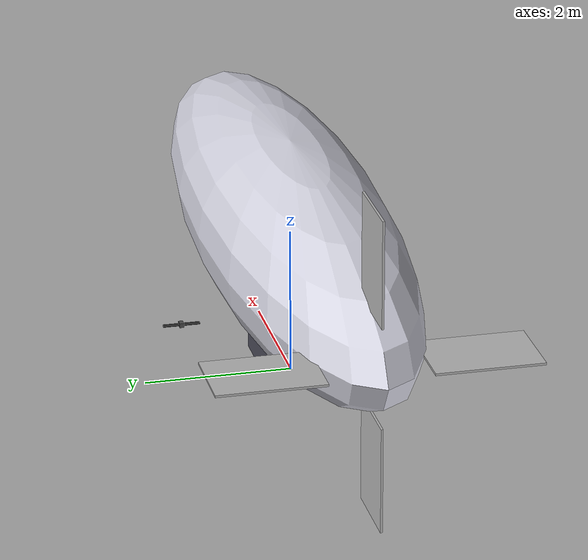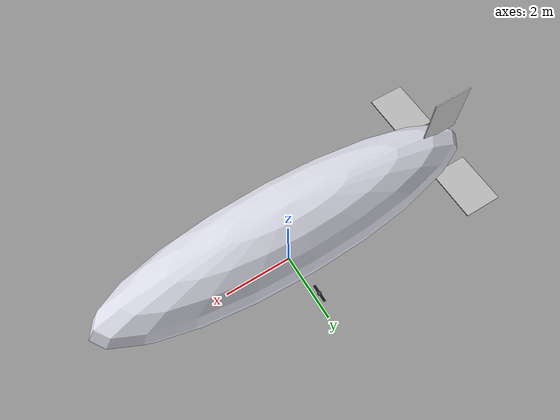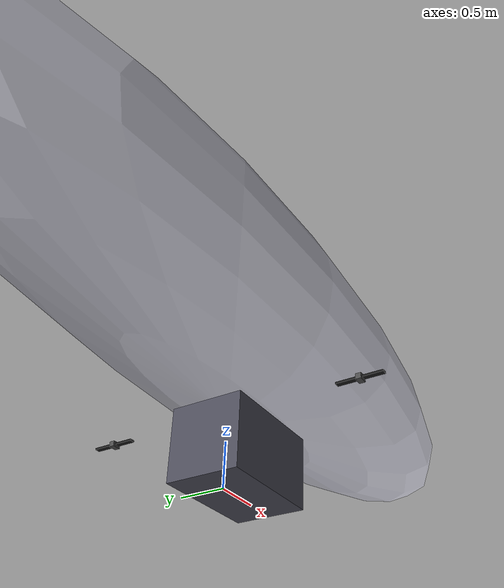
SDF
<?xml version="1.0" encoding="UTF-8"?>
<sdf version="1.10">
  <model name="airship_vectored_independent_am_fin">
    <include merge="true">
      <uri>model://airship_vectored_independent_am</uri>
    </include>
    <plugin filename="gz-sim-lift-drag-system" name="gz::sim::systems::LiftDrag">
      <!-- fin_port -->
      <link_name>base_link</link_name>
      <air_density>1.225</air_density>
      <cp>-4.200 1.363 2.050</cp>
      <forward>1 0 0</forward>
      <upward>0 0 1</upward>
      <area>1.40</area>
      <a0>0</a0>
      <cla>6.400</cla>
      <cda>0.903</cda>
      <cma>0</cma>
      <alpha_stall>0.3</alpha_stall>
      <cla_stall>-1.35</cla_stall>
      <cda_stall>1.2</cda_stall>
      <cma_stall>0</cma_stall>
    </plugin>
    <plugin filename="gz-sim-lift-drag-system" name="gz::sim::systems::LiftDrag">
      <!-- fin_starboard -->
      <link_name>base_link</link_name>
      <air_density>1.225</air_density>
      <cp>-4.200 -1.363 2.050</cp>
      <forward>1 0 0</forward>
      <upward>0 0 1</upward>
      <area>1.40</area>
      <a0>0</a0>
      <cla>6.400</cla>
      <cda>0.903</cda>
      <cma>0</cma>
      <alpha_stall>0.3</alpha_stall>
      <cla_stall>-1.35</cla_stall>
      <cda_stall>1.2</cda_stall>
      <cma_stall>0</cma_stall>
    </plugin>
    <plugin filename="gz-sim-lift-drag-system" name="gz::sim::systems::LiftDrag">
      <!-- fin_top -->
      <link_name>base_link</link_name>
      <air_density>1.225</air_density>
      <cp>-4.200 0.000 3.413</cp>
      <forward>1 0 0</forward>
      <upward>0 1 0</upward>
      <area>1.40</area>
      <a0>0</a0>
      <cla>6.400</cla>
      <cda>0.903</cda>
      <cma>0</cma>
      <alpha_stall>0.3</alpha_stall>
      <cla_stall>-1.35</cla_stall>
      <cda_stall>1.2</cda_stall>
      <cma_stall>0</cma_stall>
    </plugin>
    <plugin filename="gz-sim-lift-drag-system" name="gz::sim::systems::LiftDrag">
      <!-- fin_bottom -->
      <link_name>base_link</link_name>
      <air_density>1.225</air_density>
      <cp>-4.200 0.000 0.687</cp>
      <forward>1 0 0</forward>
      <upward>0 1 0</upward>
      <area>1.40</area>
      <a0>0</a0>
      <cla>6.400</cla>
      <cda>0.903</cda>
      <cma>0</cma>
      <alpha_stall>0.3</alpha_stall>
      <cla_stall>-1.35</cla_stall>
      <cda_stall>1.2</cda_stall>
      <cma_stall>0</cma_stall>
    </plugin>
  </model>
</sdf>

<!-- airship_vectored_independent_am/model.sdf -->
<sdf version="1.10">
  <model name="airship_vectored_independent_am">
    <include merge="true">
      <uri>model://airship_base_am</uri>
    </include>
    <link name="pod_starboard">
      <pose>0 -1.5 0.8125 0 0 0</pose>
      <inertial>
        <mass>0.4</mass>
        <inertia>
          <ixx>0.001</ixx>
          <iyy>0.001</iyy>
          <izz>0.001</izz>
        </inertia>
      </inertial>
      <visual name="pod_starboard_visual">
        <geometry>
          <box>
            <size>0.10 0.06 0.06</size>
          </box>
        </geometry>
        <material>
          <ambient>0.3 0.3 0.3 1</ambient>
          <diffuse>0.3 0.3 0.3 1</diffuse>
        </material>
      </visual>
    </link>
    <joint name="tilt_starboard_joint" type="revolute">
      <parent>base_link</parent>
      <child>pod_starboard</child>
      <axis>
        <xyz>0 -1 0</xyz>
        <limit>
          <lower>-3.141593</lower>
          <upper>3.141593</upper>
        </limit>
        <dynamics>
          <damping>0.01</damping>
        </dynamics>
      </axis>
    </joint>
    <link name="prop_starboard">
      <pose degrees="true">0 -1.5 0.8125 0 90 0</pose>
      <inertial>
        <mass>0.1</mass>
        <inertia>
          <ixx>0.001</ixx>
          <iyy>0.001</iyy>
          <izz>0.001</izz>
        </inertia>
      </inertial>
      <visual name="prop_starboard_visual">
        <geometry>
          <box>
            <size>0.02 0.5 0.06</size>
          </box>
        </geometry>
        <material>
          <ambient>0.1 0.1 0.1 1</ambient>
          <diffuse>0.1 0.1 0.1 1</diffuse>
        </material>
      </visual>
    </link>
    <joint name="prop_starboard_joint" type="revolute">
      <parent>pod_starboard</parent>
      <child>prop_starboard</child>
      <axis>
        <xyz>0 0 1</xyz>
        <limit>
          <lower>-1e+16</lower>
          <upper>1e+16</upper>
        </limit>
        <dynamics>
          <spring_reference>0</spring_reference>
          <spring_stiffness>0</spring_stiffness>
        </dynamics>
      </axis>
    </joint>
    <link name="pod_port">
      <pose>0 1.5 0.8125 0 0 0</pose>
      <inertial>
        <mass>0.4</mass>
        <inertia>
          <ixx>0.001</ixx>
          <iyy>0.001</iyy>
          <izz>0.001</izz>
        </inertia>
      </inertial>
      <visual name="pod_port_visual">
        <geometry>
          <box>
            <size>0.10 0.06 0.06</size>
          </box>
        </geometry>
        <material>
          <ambient>0.3 0.3 0.3 1</ambient>
          <diffuse>0.3 0.3 0.3 1</diffuse>
        </material>
      </visual>
    </link>
    <joint name="tilt_port_joint" type="revolute">
      <parent>base_link</parent>
      <child>pod_port</child>
      <axis>
        <xyz>0 -1 0</xyz>
        <limit>
          <lower>-3.141593</lower>
          <upper>3.141593</upper>
        </limit>
        <dynamics>
          <damping>0.01</damping>
        </dynamics>
      </axis>
    </joint>
    <link name="prop_port">
      <pose degrees="true">0 1.5 0.8125 0 90 0</pose>
      <inertial>
        <mass>0.1</mass>
        <inertia>
          <ixx>0.001</ixx>
          <iyy>0.001</iyy>
          <izz>0.001</izz>
        </inertia>
      </inertial>
      <visual name="prop_port_visual">
        <geometry>
          <box>
            <size>0.02 0.5 0.06</size>
          </box>
        </geometry>
        <material>
          <ambient>0.1 0.1 0.1 1</ambient>
          <diffuse>0.1 0.1 0.1 1</diffuse>
        </material>
      </visual>
    </link>
    <joint name="prop_port_joint" type="revolute">
      <parent>pod_port</parent>
      <child>prop_port</child>
      <axis>
        <xyz>0 0 1</xyz>
        <limit>
          <lower>-1e+16</lower>
          <upper>1e+16</upper>
        </limit>
        <dynamics>
          <spring_reference>0</spring_reference>
          <spring_stiffness>0</spring_stiffness>
        </dynamics>
      </axis>
    </joint>
    <plugin filename="gz-sim-joint-position-controller-system"
      name="gz::sim::systems::JointPositionController">
      <joint_name>tilt_starboard_joint</joint_name>
      <sub_topic>servo_0</sub_topic>
      <p_gain>2.0</p_gain>
      <i_gain>0.0</i_gain>
      <d_gain>0.1</d_gain>
    </plugin>
    <plugin filename="gz-sim-joint-position-controller-system"
      name="gz::sim::systems::JointPositionController">
      <joint_name>tilt_port_joint</joint_name>
      <sub_topic>servo_1</sub_topic>
      <p_gain>2.0</p_gain>
      <i_gain>0.0</i_gain>
      <d_gain>0.1</d_gain>
    </plugin>
    <plugin filename="gz-sim-multicopter-motor-model-system"
      name="gz::sim::systems::MulticopterMotorModel">
      <jointName>prop_starboard_joint</jointName>
      <linkName>prop_starboard</linkName>
      <turningDirection>ccw</turningDirection>
      <timeConstantUp>0.0125</timeConstantUp>
      <timeConstantDown>0.025</timeConstantDown>
      <maxRotVelocity>300.0</maxRotVelocity>
      <motorConstant>0.0002</motorConstant>
      <momentConstant>0.016</momentConstant>
      <commandSubTopic>command/motor_speed</commandSubTopic>
      <motorNumber>0</motorNumber>
      <rotorDragCoefficient>8.06428e-05</rotorDragCoefficient>
      <rollingMomentCoefficient>1e-06</rollingMomentCoefficient>
      <rotorVelocitySlowdownSim>10</rotorVelocitySlowdownSim>
      <motorType>velocity</motorType>
    </plugin>
    <plugin filename="gz-sim-multicopter-motor-model-system"
      name="gz::sim::systems::MulticopterMotorModel">
      <jointName>prop_port_joint</jointName>
      <linkName>prop_port</linkName>
      <turningDirection>cw</turningDirection>
      <timeConstantUp>0.0125</timeConstantUp>
      <timeConstantDown>0.025</timeConstantDown>
      <maxRotVelocity>300.0</maxRotVelocity>
      <motorConstant>0.0002</motorConstant>
      <momentConstant>0.016</momentConstant>
      <commandSubTopic>command/motor_speed</commandSubTopic>
      <motorNumber>1</motorNumber>
      <rotorDragCoefficient>8.06428e-05</rotorDragCoefficient>
      <rollingMomentCoefficient>1e-06</rollingMomentCoefficient>
      <rotorVelocitySlowdownSim>10</rotorVelocitySlowdownSim>
      <motorType>velocity</motorType>
    </plugin>
  </model>
</sdf>

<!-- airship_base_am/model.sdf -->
<sdf version="1.10">
  <model name="airship_base_am">
    <self_collide>false</self_collide>
    <static>false</static>
    <link name="base_link">
      <pose>0 0 0 0 0 0</pose>
      <inertial>
        <pose>-0.0002 0.0000 0.8125 0 0 0</pose>
        <mass>48.0</mass>
        <inertia>
          <ixx>38.6349</ixx>
          <iyy>133.3492</iyy>
          <izz>108.8467</izz>
          <ixy>0.0000</ixy>
          <ixz>14.6817</ixz>
          <iyz>0.0000</iyz>
        </inertia>
        <fluid_added_mass>
          <xx>3.20201</xx>
          <yy>36.53407</yy>
          <zz>36.53407</zz>
          <xq>6.56412</xq>
          <yp>-74.89484</yp>
          <pp>153.53443</pp>
          <qq>167.80040</qq>
          <rr>154.34394</rr>
        </fluid_added_mass>
      </inertial>
      <!-- Buoyancy volume 39.2 m^3 -->
      <collision name="hull_collision">
        <pose>0 0 2.05 0 0 0</pose>
        <geometry>
          <box>
            <size>9.8 2 2</size>
          </box>
        </geometry>
      </collision>
      <!-- Ground contact; buoyancy volume 0.8 m^3 -->
      <collision name="gondola_collision">
        <pose>0.247 0 0.4 0 0 0</pose>
        <geometry>
          <box>
            <size>1.25 0.8 0.8</size>
          </box>
        </geometry>
        <surface>
          <contact>
            <ode>
              <min_depth>0.001</min_depth>
              <max_vel>0</max_vel>
            </ode>
          </contact>
          <friction>
            <ode />
          </friction>
        </surface>
      </collision>
      <visual name="hull_visual">
        <pose>0 0 2.05 0 0 0</pose>
        <geometry>
          <ellipsoid>
            <radii>5.25 1.25 1.25</radii>
          </ellipsoid>
        </geometry>
        <material>
          <ambient>0.85 0.85 0.9 1</ambient>
          <diffuse>0.85 0.85 0.9 1</diffuse>
          <specular>0.3 0.3 0.3 1</specular>
        </material>
      </visual>
      <visual name="gondola_visual">
        <pose>0.247 0 0.4 0 0 0</pose>
        <geometry>
          <box>
            <size>1.25 0.8 0.8</size>
          </box>
        </geometry>
        <material>
          <ambient>0.3 0.3 0.35 1</ambient>
          <diffuse>0.3 0.3 0.35 1</diffuse>
          <specular>0.2 0.2 0.2 1</specular>
        </material>
      </visual>
      <visual name="fin_port_visual">
        <pose>-4.450 1.363 2.050 0 0 0</pose>
        <geometry>
          <box>
            <size>1.00 1.40 0.03</size>
          </box>
        </geometry>
        <material>
        </material>
      </visual>
      <visual name="fin_starboard_visual">
        <pose>-4.450 -1.363 2.050 0 0 0</pose>
        <geometry>
          <box>
            <size>1.00 1.40 0.03</size>
          </box>
        </geometry>
        <material>
        </material>
      </visual>
      <visual name="fin_top_visual">
        <pose>-4.450 0.000 3.413 0 0 0</pose>
        <geometry>
          <box>
            <size>1.00 0.03 1.40</size>
          </box>
        </geometry>
        <material>
        </material>
      </visual>
      <visual name="fin_bottom_visual">
        <pose>-4.450 0.000 0.687 0 0 0</pose>
        <geometry>
          <box>
            <size>1.00 0.03 1.40</size>
          </box>
        </geometry>
        <material>
        </material>
      </visual>
      <sensor name="air_pressure_sensor" type="air_pressure">
        <gz_frame_id>base_link</gz_frame_id>
        <always_on>1</always_on>
        <update_rate>50</update_rate>
        <air_pressure>
          <!-- Noise modeled after BMP390 -->
          <pressure>
            <noise type="gaussian">
              <mean>0</mean>
              <stddev>3</stddev>
            </noise>
          </pressure>
        </air_pressure>
      </sensor>
      <sensor name="magnetometer_sensor" type="magnetometer">
        <gz_frame_id>base_link</gz_frame_id>
        <always_on>1</always_on>
        <update_rate>100</update_rate>
        <magnetometer>
          <!-- TODO: update to fix units and coordinate system when we move past Harmonic -->
          <!-- See https://github.com/gazebosim/gz-sim/pull/2460 -->
          <!-- 3mgauss RMS: NOTE: noise is in tesla but sensor reports data in gauss -->
          <!-- Noise modeled after IIS2MDC -->
          <x>
            <noise type="gaussian">
              <stddev>0.0001</stddev>
            </noise>
          </x>
          <y>
            <noise type="gaussian">
              <stddev>0.0001</stddev>
            </noise>
          </y>
          <z>
            <noise type="gaussian">
              <stddev>0.0001</stddev>
            </noise>
          </z>
        </magnetometer>
      </sensor>
      <sensor name="imu_sensor" type="imu">
        <gz_frame_id>base_link</gz_frame_id>
        <always_on>1</always_on>
        <update_rate>250</update_rate>
        <imu>
          <angular_velocity>
            <!-- Noise modeled after IIM42653, 0.05 deg/s in rad/s -->
            <x>
              <noise type="gaussian">
                <mean>0.0</mean>
                <stddev>0.0008726646</stddev>
              </noise>
            </x>
            <y>
              <noise type="gaussian">
                <mean>0.0</mean>
                <stddev>0.0008726646</stddev>
              </noise>
            </y>
            <z>
              <noise type="gaussian">
                <mean>0.0</mean>
                <stddev>0.0008726646</stddev>
              </noise>
            </z>
          </angular_velocity>
          <linear_acceleration>
            <!-- Noise modeled after IIM42653, 0.65/0.70 mg-rms in m/s^2 -->
            <x>
              <noise type="gaussian">
                <mean>0.0</mean>
                <stddev>0.00637</stddev>
              </noise>
            </x>
            <y>
              <noise type="gaussian">
                <mean>0.0</mean>
                <stddev>0.00637</stddev>
              </noise>
            </y>
            <z>
              <noise type="gaussian">
                <mean>0.0</mean>
                <stddev>0.00686</stddev>
              </noise>
            </z>
          </linear_acceleration>
        </imu>
      </sensor>
      <sensor name="navsat_sensor" type="navsat">
        <gz_frame_id>base_link</gz_frame_id>
        <always_on>1</always_on>
        <update_rate>30</update_rate>
      </sensor>
    </link>
  </model>
</sdf>
